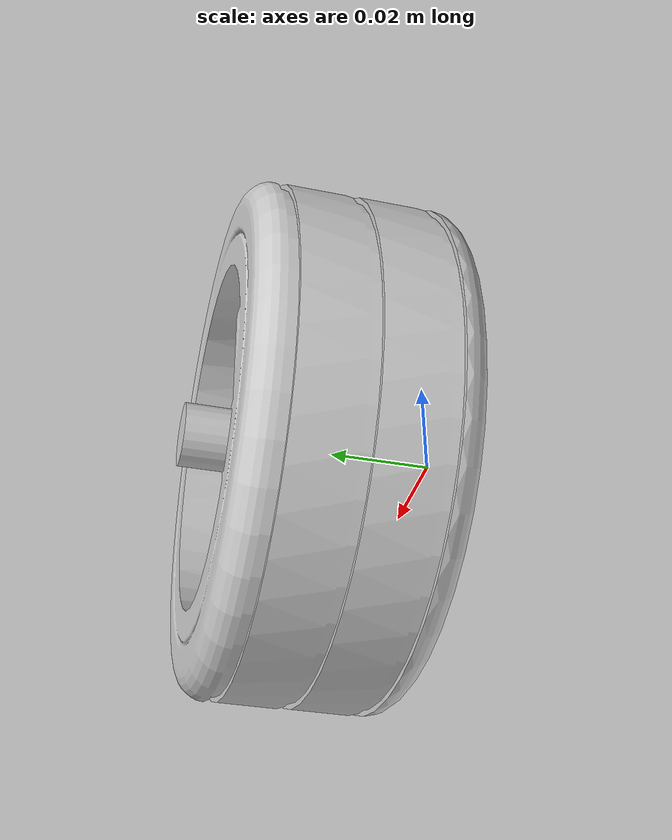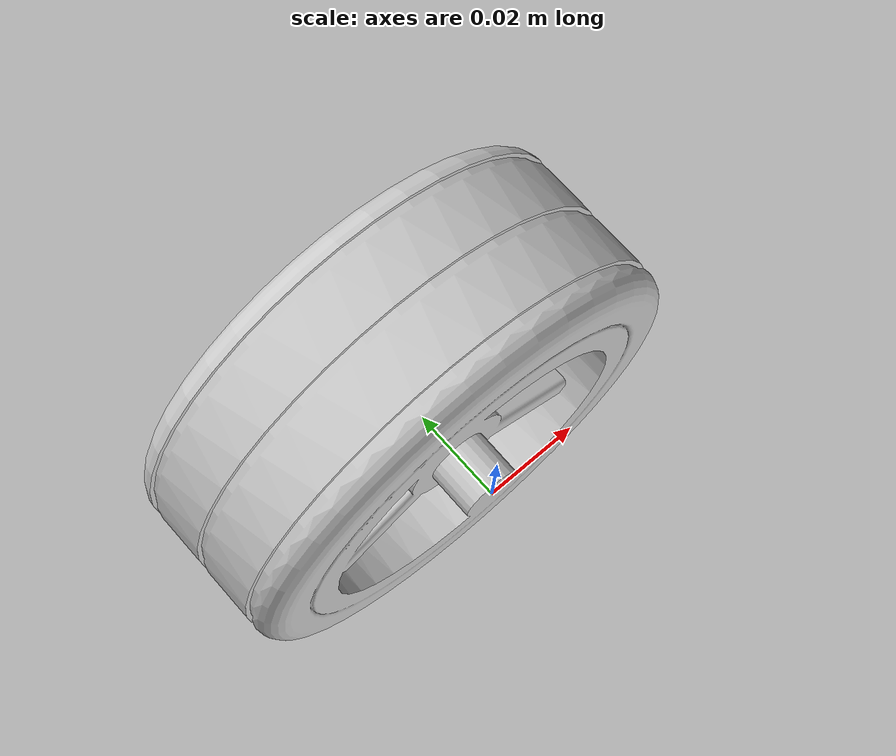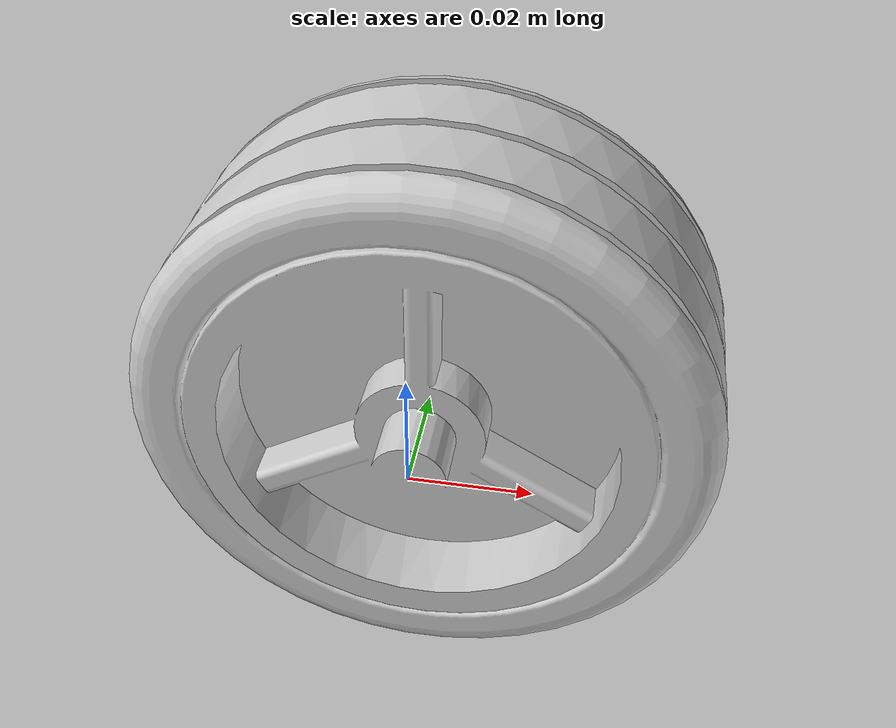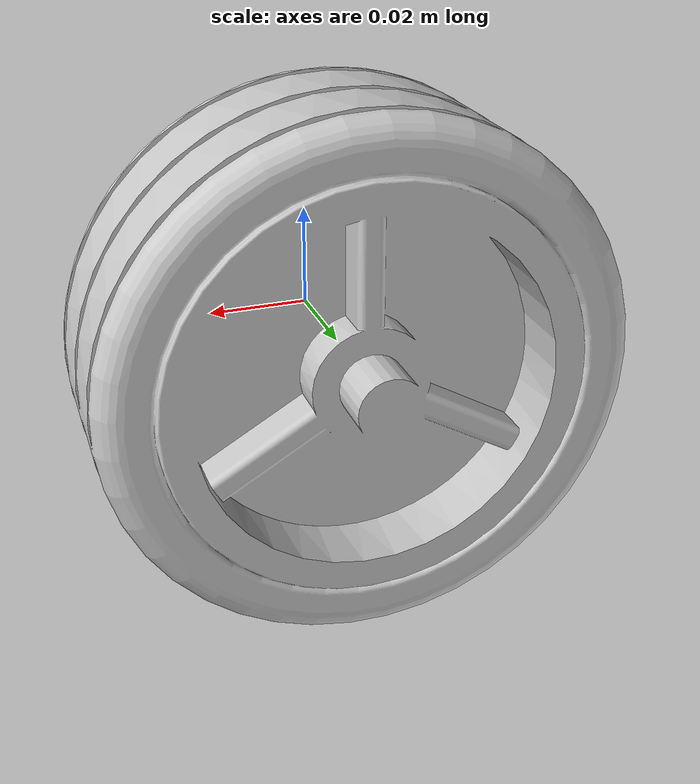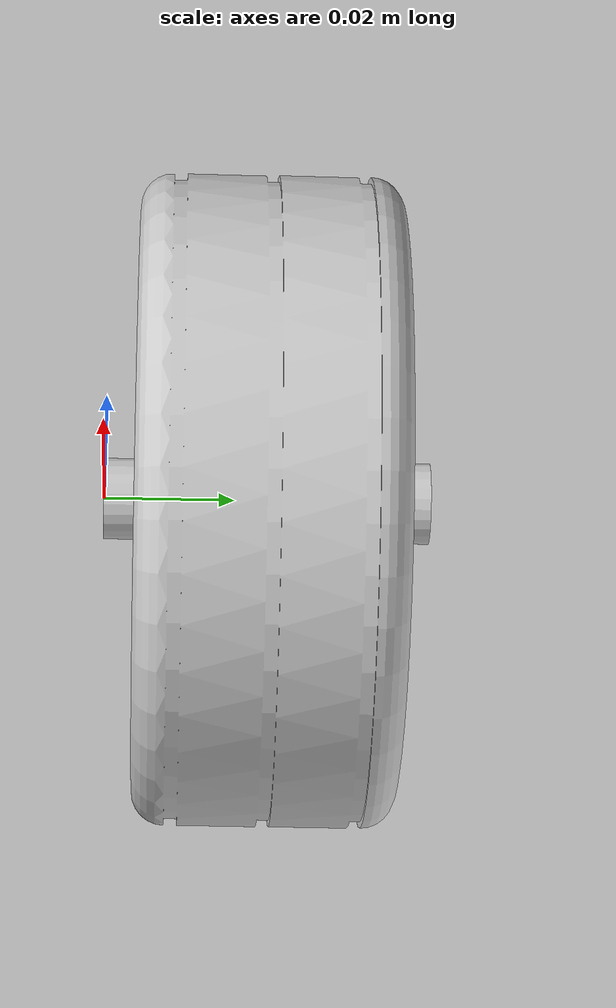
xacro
<?xml version="1.0"?>
  <robot xmlns:xacro="http://ros.org/wiki/xacro" name="test">

<link name="base_link">
    </link>

<link name="test_link">
    <inertial>
      <mass value="0.2"/>
      <origin rpy="0 0 0" xyz="0 0 0"/>
      <inertia ixx="100" ixy="0" ixz="0" iyy="100" iyz="0" izz="100"/>
    </inertial>

    <collision>
      <origin rpy="0 0 0" xyz="0 0 0" />
      <geometry>
        <mesh filename="package://anya_slam1/meshes/castor_wheel.stl" scale="1 1 1"/>
      </geometry>
    </collision>

    <visual>
      <origin rpy="0 0 0" xyz="0 0 0"/>
      <geometry>
         <mesh filename="package://anya_slam1/meshes/castor_wheel.dae" scale="1 1 1"/>
      </geometry>
    </visual>
  </link>

<joint name="fixed_joint" type="fixed">
    <parent link="base_link"/>
    <child link="test_link"/>
    <origin xyz="0.0 0.0 0.0" rpy="0 0.0 0.0"/>
</joint>

</robot>
